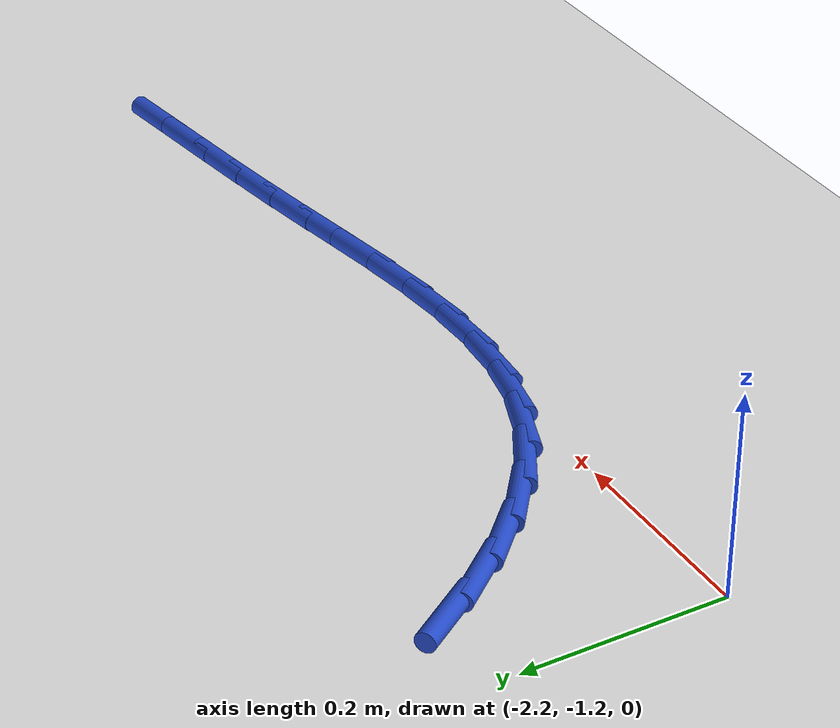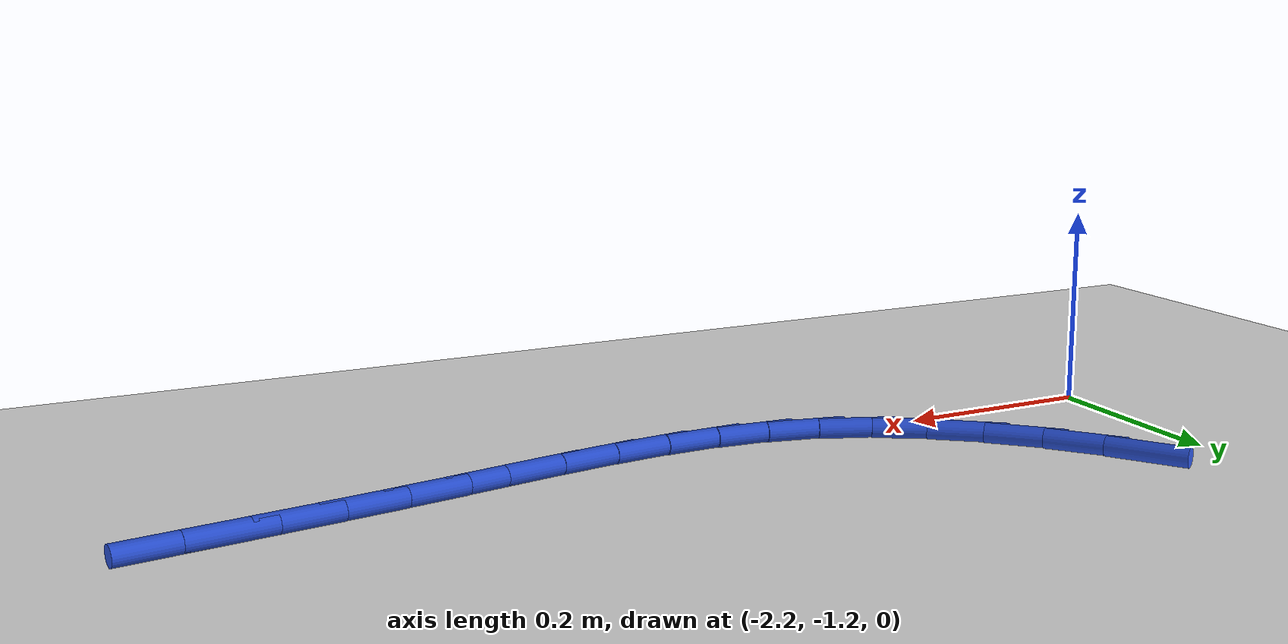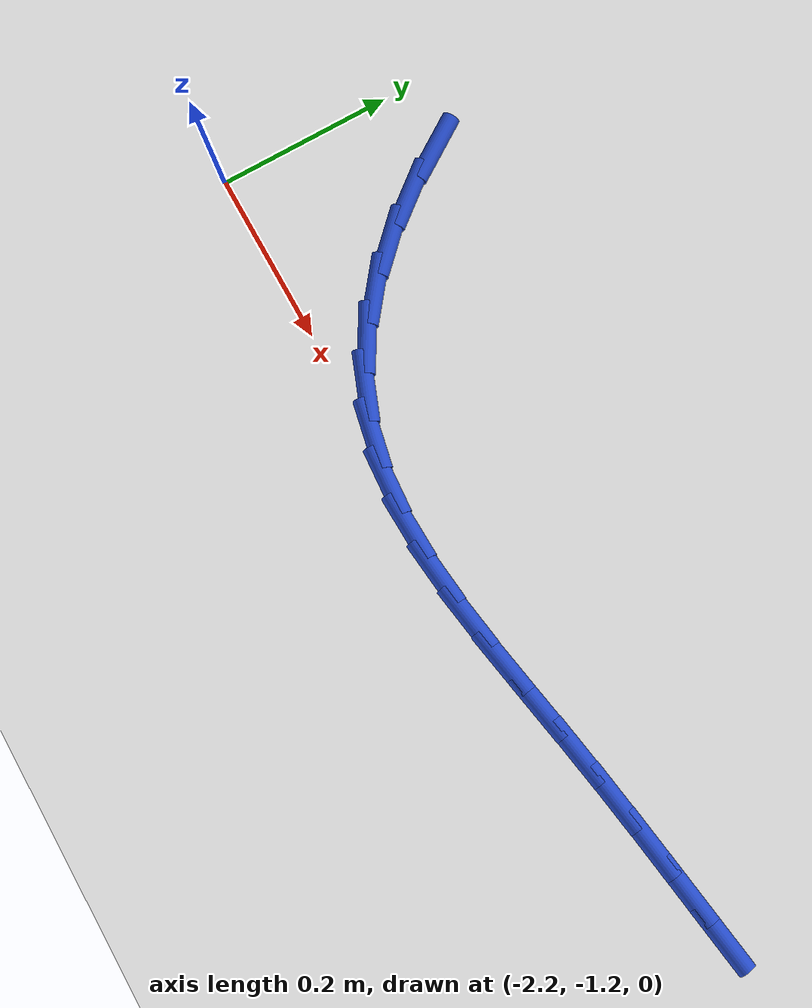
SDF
<sdf version="1.6">
 <world name="default">
  <model name="ground_plane">
   <static>1</static>
   <link name="link">
    <collision name="collision">
     <geometry><plane><normal>0 0 1</normal><size>100 100</size></plane></geometry>
     <surface><friction><ode><mu>100</mu><mu2>50</mu2></ode></friction></surface>
    </collision>
    <visual name="visual">
     <cast_shadows>0</cast_shadows>
     <geometry><plane><normal>0 0 1</normal><size>100 100</size></plane></geometry>
     <material>
      <script><uri>file://media/materials/scripts/gazebo.material</uri><name>Gazebo/WhiteGlow</name></script>
     </material>
    </visual>
   </link>
  </model>
  <model name="line">
   <link name="link_90">
    <pose>-2.117957189735652 -0.9821169742741727 0.01 0 1.57 -0.9819076566004005</pose>
    <collision name="collision">
     <geometry><cylinder><radius>0.01</radius><length>0.08</length></cylinder></geometry>
    </collision>
    <visual name="visual">
     <material>
      <script><name>Gazebo/Blue</name><uri>file://media/materials/scripts/gazebo.material</uri></script>
     </material>
     <geometry><cylinder><radius>0.01</radius><length>0.08</length></cylinder></geometry>
    </visual>
   </link>
   <link name="link_91">
    <pose>-2.084809594026017 -1.031743038833756 0.01 0 1.57 -0.8884947514427498</pose>
    <collision name="collision">
     <geometry><cylinder><radius>0.01</radius><length>0.08</length></cylinder></geometry>
    </collision>
    <visual name="visual">
     <material>
      <script><name>Gazebo/Blue</name><uri>file://media/materials/scripts/gazebo.material</uri></script>
     </material>
     <geometry><cylinder><radius>0.01</radius><length>0.08</length></cylinder></geometry>
    </visual>
   </link>
   <link name="link_92">
    <pose>-2.0481629578393474 -1.0768479715822918 0.01 0 1.57 -0.7824765619865748</pose>
    <collision name="collision">
     <geometry><cylinder><radius>0.01</radius><length>0.08</length></cylinder></geometry>
    </collision>
    <visual name="visual">
     <material>
      <script><name>Gazebo/Blue</name><uri>file://media/materials/scripts/gazebo.material</uri></script>
     </material>
     <geometry><cylinder><radius>0.01</radius><length>0.08</length></cylinder></geometry>
    </visual>
   </link>
   <link name="link_93">
    <pose>-2.0081701531534994 -1.1166077702865933 0.01 0 1.57 -0.6610644147449508</pose>
    <collision name="collision">
     <geometry><cylinder><radius>0.01</radius><length>0.08</length></cylinder></geometry>
    </collision>
    <visual name="visual">
     <material>
      <script><name>Gazebo/Blue</name><uri>file://media/materials/scripts/gazebo.material</uri></script>
     </material>
     <geometry><cylinder><radius>0.01</radius><length>0.08</length></cylinder></geometry>
    </visual>
   </link>
   <link name="link_94">
    <pose>-1.9649840519463266 -1.1501984327134718 0.01 0 1.57 -0.5221150272227103</pose>
    <collision name="collision">
     <geometry><cylinder><radius>0.01</radius><length>0.08</length></cylinder></geometry>
    </collision>
    <visual name="visual">
     <material>
      <script><name>Gazebo/Blue</name><uri>file://media/materials/scripts/gazebo.material</uri></script>
     </material>
     <geometry><cylinder><radius>0.01</radius><length>0.08</length></cylinder></geometry>
    </visual>
   </link>
   <link name="link_95">
    <pose>-1.9187575261956848 -1.1767959566297401 0.01 0 1.57 -0.3652760010253665</pose>
    <collision name="collision">
     <geometry><cylinder><radius>0.01</radius><length>0.08</length></cylinder></geometry>
    </collision>
    <visual name="visual">
     <material>
      <script><name>Gazebo/Blue</name><uri>file://media/materials/scripts/gazebo.material</uri></script>
     </material>
     <geometry><cylinder><radius>0.01</radius><length>0.08</length></cylinder></geometry>
    </visual>
   </link>
   <link name="link_96">
    <pose>-1.8696438001111093 -1.1955789311458886 0.01 0 1.57 -0.20475220792065918</pose>
    <collision name="collision">
     <geometry><cylinder><radius>0.01</radius><length>0.08</length></cylinder></geometry>
    </collision>
    <visual name="visual">
     <material>
      <script><name>Gazebo/Blue</name><uri>file://media/materials/scripts/gazebo.material</uri></script>
     </material>
     <geometry><cylinder><radius>0.01</radius><length>0.08</length></cylinder></geometry>
    </visual>
   </link>
   <link name="link_97">
    <pose>-1.8178780322901191 -1.2063287309003432 0.01 0 1.57 -0.07155175958120556</pose>
    <collision name="collision">
     <geometry><cylinder><radius>0.01</radius><length>0.08</length></cylinder></geometry>
    </collision>
    <visual name="visual">
     <material>
      <script><name>Gazebo/Blue</name><uri>file://media/materials/scripts/gazebo.material</uri></script>
     </material>
     <geometry><cylinder><radius>0.01</radius><length>0.08</length></cylinder></geometry>
    </visual>
   </link>
   <link name="link_98">
    <pose>-1.7638818893299728 -1.2101988567638855 0.01 0 1.57 0.02986066715614949</pose>
    <collision name="collision">
     <geometry><cylinder><radius>0.01</radius><length>0.08</length></cylinder></geometry>
    </collision>
    <visual name="visual">
     <material>
      <script><name>Gazebo/Blue</name><uri>file://media/materials/scripts/gazebo.material</uri></script>
     </material>
     <geometry><cylinder><radius>0.01</radius><length>0.08</length></cylinder></geometry>
    </visual>
   </link>
   <link name="link_99">
    <pose>-1.7081028574066826 -1.2085327624316449 0.01 0 1.57 0.10222352634762076</pose>
    <collision name="collision">
     <geometry><cylinder><radius>0.01</radius><length>0.08</length></cylinder></geometry>
    </collision>
    <visual name="visual">
     <material>
      <script><name>Gazebo/Blue</name><uri>file://media/materials/scripts/gazebo.material</uri></script>
     </material>
     <geometry><cylinder><radius>0.01</radius><length>0.08</length></cylinder></geometry>
    </visual>
   </link>
   <link name="link_100">
    <pose>-1.6509884226962572 -1.2026739015987473 0.01 0 1.57 0.1490218162277606</pose>
    <collision name="collision">
     <geometry><cylinder><radius>0.01</radius><length>0.08</length></cylinder></geometry>
    </collision>
    <visual name="visual">
     <material>
      <script><name>Gazebo/Blue</name><uri>file://media/materials/scripts/gazebo.material</uri></script>
     </material>
     <geometry><cylinder><radius>0.01</radius><length>0.08</length></cylinder></geometry>
    </visual>
   </link>
   <link name="link_101">
    <pose>-1.59298607137471 -1.1939657279603213 0.01 0 1.57 0.17302228930949384</pose>
    <collision name="collision">
     <geometry><cylinder><radius>0.01</radius><length>0.08</length></cylinder></geometry>
    </collision>
    <visual name="visual">
     <material>
      <script><name>Gazebo/Blue</name><uri>file://media/materials/scripts/gazebo.material</uri></script>
     </material>
     <geometry><cylinder><radius>0.01</radius><length>0.08</length></cylinder></geometry>
    </visual>
   </link>
   <link name="link_102">
    <pose>-1.5345432896180506 -1.1837516952114941 0.01 0 1.57 0.17573837652674507</pose>
    <collision name="collision">
     <geometry><cylinder><radius>0.01</radius><length>0.08</length></cylinder></geometry>
    </collision>
    <visual name="visual">
     <material>
      <script><name>Gazebo/Blue</name><uri>file://media/materials/scripts/gazebo.material</uri></script>
     </material>
     <geometry><cylinder><radius>0.01</radius><length>0.08</length></cylinder></geometry>
    </visual>
   </link>
   <link name="link_103">
    <pose>-1.4761075625117936 -1.1733752528752528 0.01 0 1.57 0.16204192280867324</pose>
    <collision name="collision">
     <geometry><cylinder><radius>0.01</radius><length>0.08</length></cylinder></geometry>
    </collision>
    <visual name="visual">
     <material>
      <script><name>Gazebo/Blue</name><uri>file://media/materials/scripts/gazebo.material</uri></script>
     </material>
     <geometry><cylinder><radius>0.01</radius><length>0.08</length></cylinder></geometry>
    </visual>
   </link>
   <link name="link_104">
    <pose>-1.4180490803121648 -1.1638841276612626 0.01 0 1.57 0.1491722900026604</pose>
    <collision name="collision">
     <geometry><cylinder><radius>0.01</radius><length>0.08</length></cylinder></geometry>
    </collision>
    <visual name="visual">
     <material>
      <script><name>Gazebo/Blue</name><uri>file://media/materials/scripts/gazebo.material</uri></script>
     </material>
     <geometry><cylinder><radius>0.01</radius><length>0.08</length></cylinder></geometry>
    </visual>
   </link>
   <link name="link_105">
    <pose>-1.3604509735850179 -1.155227782656479 0.01 0 1.57 0.1413279113378697</pose>
    <collision name="collision">
     <geometry><cylinder><radius>0.01</radius><length>0.08</length></cylinder></geometry>
    </collision>
    <visual name="visual">
     <material>
      <script><name>Gazebo/Blue</name><uri>file://media/materials/scripts/gazebo.material</uri></script>
     </material>
     <geometry><cylinder><radius>0.01</radius><length>0.08</length></cylinder></geometry>
    </visual>
   </link>
   <link name="link_106">
    <pose>-1.3033297475137788 -1.147100778443882 0.01 0 1.57 0.13866647746486765</pose>
    <collision name="collision">
     <geometry><cylinder><radius>0.01</radius><length>0.08</length></cylinder></geometry>
    </collision>
    <visual name="visual">
     <material>
      <script><name>Gazebo/Blue</name><uri>file://media/materials/scripts/gazebo.material</uri></script>
     </material>
     <geometry><cylinder><radius>0.01</radius><length>0.08</length></cylinder></geometry>
    </visual>
   </link>
   <link name="link_107">
    <pose>-1.2467019072818744 -1.1391976756064524 0.01 0 1.57 0.1413345365285853</pose>
    <collision name="collision">
     <geometry><cylinder><radius>0.01</radius><length>0.08</length></cylinder></geometry>
    </collision>
    <visual name="visual">
     <material>
      <script><name>Gazebo/Blue</name><uri>file://media/materials/scripts/gazebo.material</uri></script>
     </material>
     <geometry><cylinder><radius>0.01</radius><length>0.08</length></cylinder></geometry>
    </visual>
   </link>
  </model>
 </world>
</sdf>
